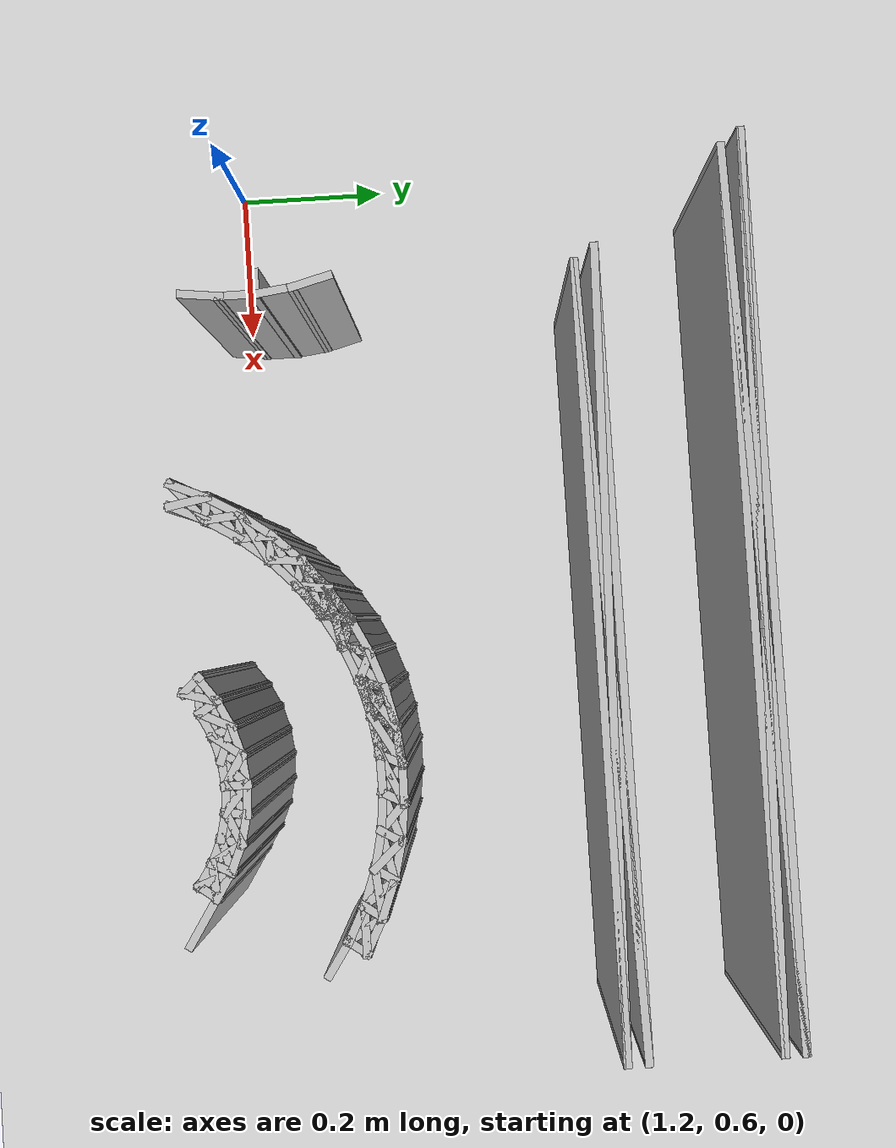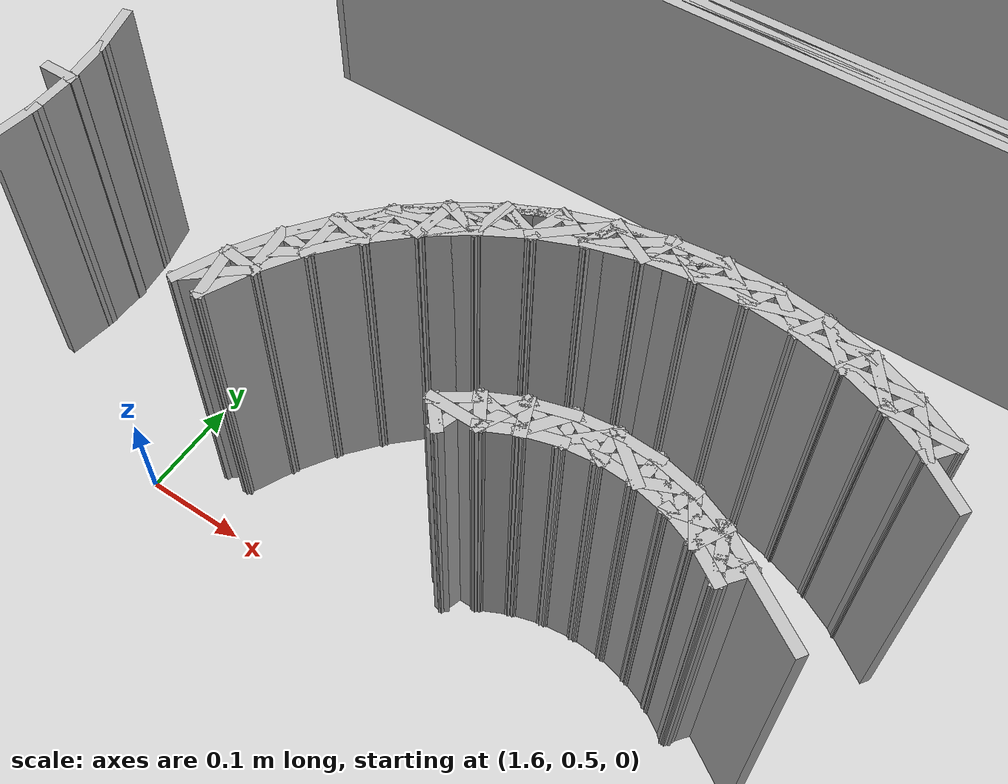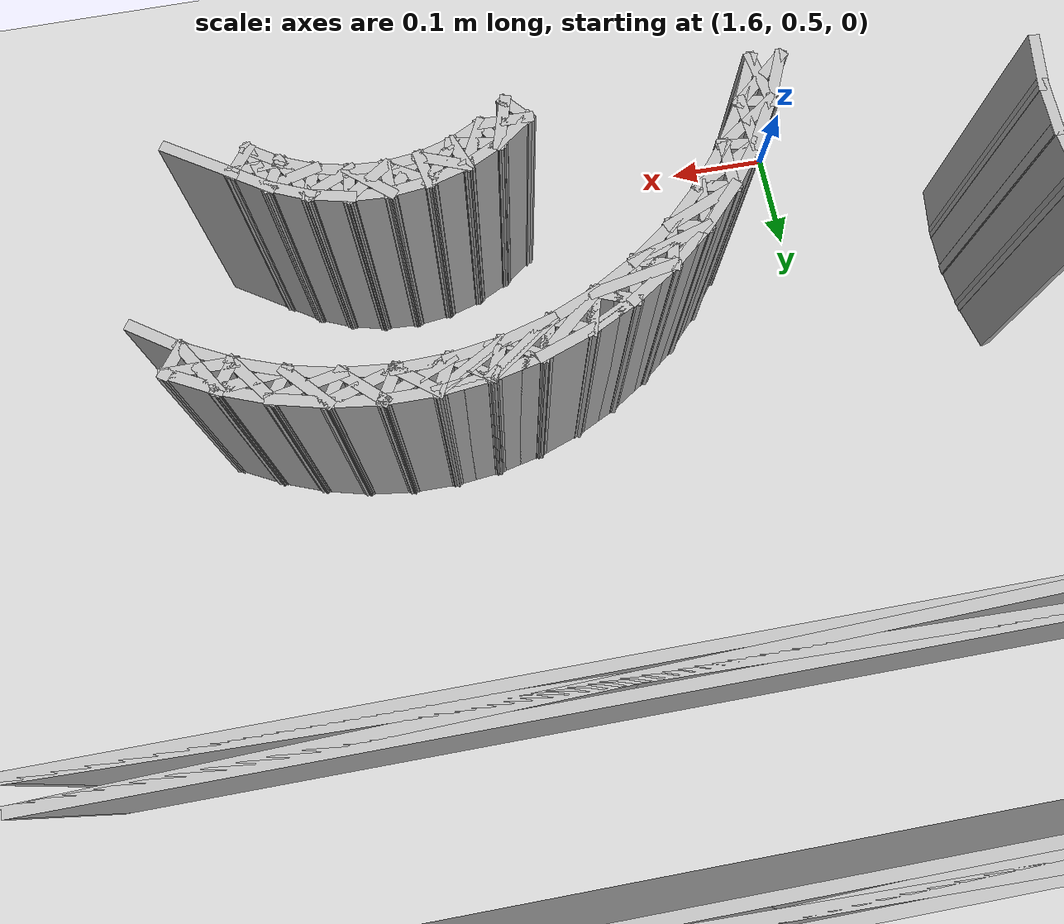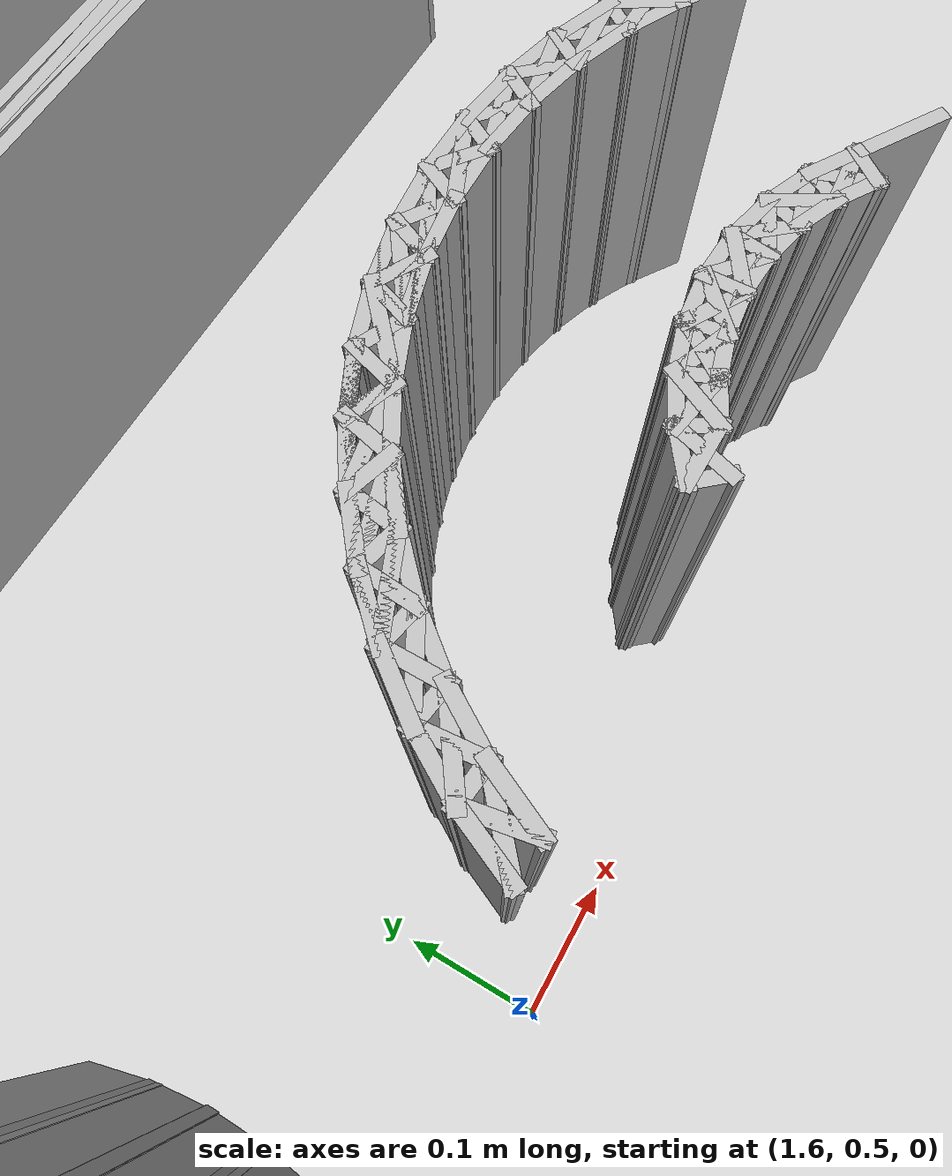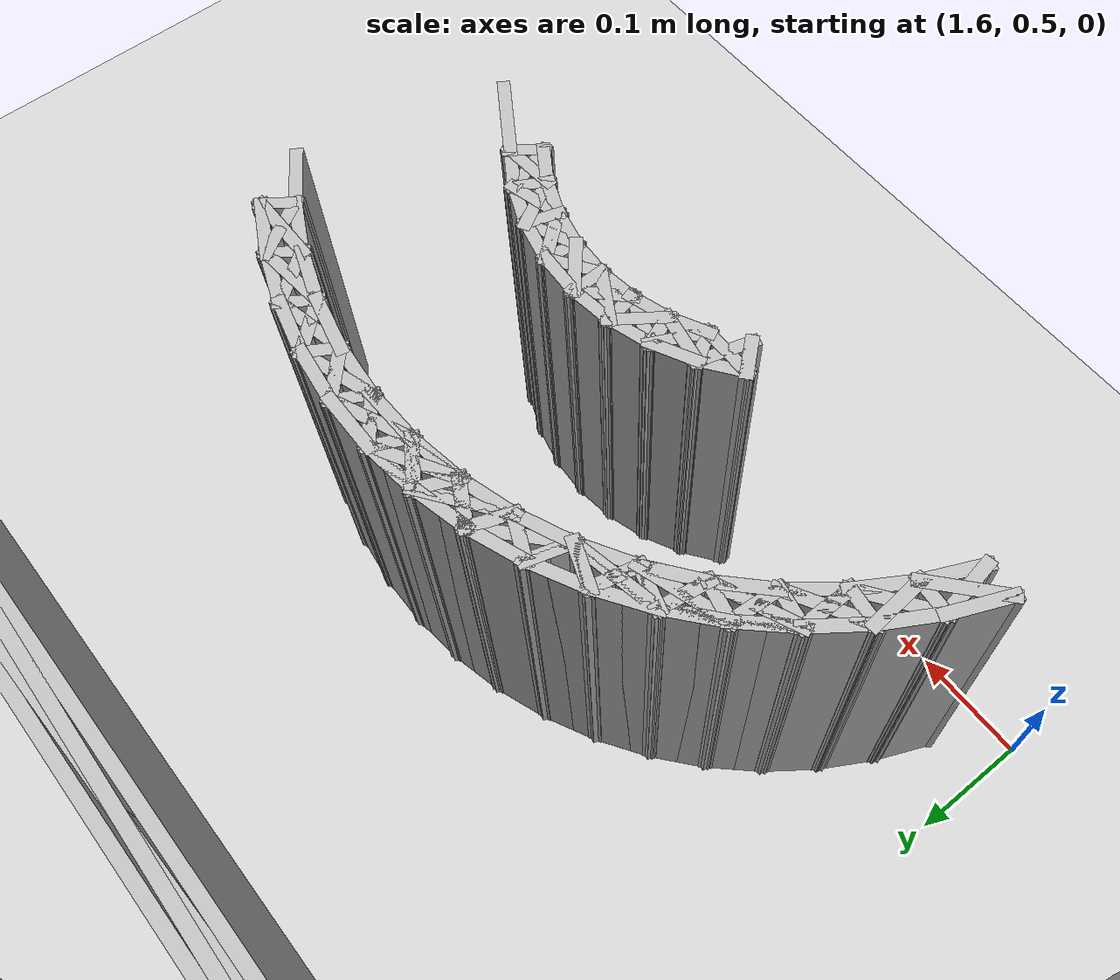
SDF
<sdf version="1.8">
 <world name="rosy_road">
  <model name="ground_plane">
   <link name="l">
    <visual name="v"><geometry><plane><normal>0 0 1</normal><size>4 2</size></plane></geometry></visual>
    <collision name="v"><geometry><plane><normal>0 0 1</normal><size>4 2</size></plane></geometry></collision>
   </link>
  </model>
  <model name="walls">
   <static>true</static>
   <link name="wall_106">
    <pose>1.8262 1.2326 0.150 0 0 0.0000</pose>
    <visual name="v"><geometry><box><size>1.0896 0.0100 0.300</size></box></geometry></visual>
    <collision name="c"><geometry><box><size>1.0896 0.0100 0.300</size></box></geometry></collision>
   </link>
   <link name="wall_107">
    <pose>1.8175 1.2450 0.150 0 0 3.1189</pose>
    <visual name="v"><geometry><box><size>1.1073 0.0100 0.300</size></box></geometry></visual>
    <collision name="c"><geometry><box><size>1.1073 0.0100 0.300</size></box></geometry></collision>
   </link>
   <link name="wall_108">
    <pose>1.8175 1.2575 0.150 0 0 0.0000</pose>
    <visual name="v"><geometry><box><size>1.1070 0.0100 0.300</size></box></geometry></visual>
    <collision name="c"><geometry><box><size>1.1070 0.0100 0.300</size></box></geometry></collision>
   </link>
   <link name="wall_109">
    <pose>1.8262 1.2450 0.150 0 0 -3.1185</pose>
    <visual name="v"><geometry><box><size>1.0899 0.0100 0.300</size></box></geometry></visual>
    <collision name="c"><geometry><box><size>1.0899 0.0100 0.300</size></box></geometry></collision>
   </link>
   <link name="wall_298">
    <pose>1.8913 0.5613 0.150 0 0 -0.8561</pose>
    <visual name="v"><geometry><box><size>0.0370 0.0100 0.300</size></box></geometry></visual>
    <collision name="c"><geometry><box><size>0.0370 0.0100 0.300</size></box></geometry></collision>
   </link>
   <link name="wall_299">
    <pose>1.9055 0.5716 0.150 0 0 1.2766</pose>
    <visual name="v"><geometry><box><size>0.0534 0.0100 0.300</size></box></geometry></visual>
    <collision name="c"><geometry><box><size>0.0534 0.0100 0.300</size></box></geometry></collision>
   </link>
   <link name="wall_300">
    <pose>1.8973 0.5810 0.150 0 0 -2.5118</pose>
    <visual name="v"><geometry><box><size>0.0471 0.0100 0.300</size></box></geometry></visual>
    <collision name="c"><geometry><box><size>0.0471 0.0100 0.300</size></box></geometry></collision>
   </link>
   <link name="wall_301">
    <pose>1.9038 0.5704 0.150 0 0 -0.0169</pose>
    <visual name="v"><geometry><box><size>0.0533 0.0100 0.300</size></box></geometry></visual>
    <collision name="c"><geometry><box><size>0.0533 0.0100 0.300</size></box></geometry></collision>
   </link>
   <link name="wall_314">
    <pose>1.9180 0.5807 0.150 0 0 -1.0283</pose>
    <visual name="v"><geometry><box><size>0.0370 0.0100 0.300</size></box></geometry></visual>
    <collision name="c"><geometry><box><size>0.0370 0.0100 0.300</size></box></geometry></collision>
   </link>
   <link name="wall_315">
    <pose>1.9337 0.5885 0.150 0 0 1.1061</pose>
    <visual name="v"><geometry><box><size>0.0533 0.0100 0.300</size></box></geometry></visual>
    <collision name="c"><geometry><box><size>0.0533 0.0100 0.300</size></box></geometry></collision>
   </link>
   <link name="wall_316">
    <pose>1.9272 0.5991 0.150 0 0 -2.6831</pose>
    <visual name="v"><geometry><box><size>0.0470 0.0100 0.300</size></box></geometry></visual>
    <collision name="c"><geometry><box><size>0.0470 0.0100 0.300</size></box></geometry></collision>
   </link>
   <link name="wall_317">
    <pose>1.9318 0.5875 0.150 0 0 -0.1903</pose>
    <visual name="v"><geometry><box><size>0.0532 0.0100 0.300</size></box></geometry></visual>
    <collision name="c"><geometry><box><size>0.0532 0.0100 0.300</size></box></geometry></collision>
   </link>
   <link name="wall_318">
    <pose>1.9382 0.5768 0.150 0 0 -2.6838</pose>
    <visual name="v"><geometry><box><size>0.0428 0.0100 0.300</size></box></geometry></visual>
    <collision name="c"><geometry><box><size>0.0428 0.0100 0.300</size></box></geometry></collision>
   </link>
   <link name="wall_336">
    <pose>1.9475 0.5952 0.150 0 0 -1.1985</pose>
    <visual name="v"><geometry><box><size>0.0370 0.0100 0.300</size></box></geometry></visual>
    <collision name="c"><geometry><box><size>0.0370 0.0100 0.300</size></box></geometry></collision>
   </link>
   <link name="wall_337">
    <pose>1.9643 0.6002 0.150 0 0 0.9317</pose>
    <visual name="v"><geometry><box><size>0.0532 0.0100 0.300</size></box></geometry></visual>
    <collision name="c"><geometry><box><size>0.0532 0.0100 0.300</size></box></geometry></collision>
   </link>
   <link name="wall_338">
    <pose>1.9598 0.6118 0.150 0 0 -2.8586</pose>
    <visual name="v"><geometry><box><size>0.0471 0.0100 0.300</size></box></geometry></visual>
    <collision name="c"><geometry><box><size>0.0471 0.0100 0.300</size></box></geometry></collision>
   </link>
   <link name="wall_339">
    <pose>1.9622 0.5995 0.150 0 0 -0.3639</pose>
    <visual name="v"><geometry><box><size>0.0533 0.0100 0.300</size></box></geometry></visual>
    <collision name="c"><geometry><box><size>0.0533 0.0100 0.300</size></box></geometry></collision>
   </link>
   <link name="wall_340">
    <pose>1.9667 0.5879 0.150 0 0 -2.8579</pose>
    <visual name="v"><geometry><box><size>0.0427 0.0100 0.300</size></box></geometry></visual>
    <collision name="c"><geometry><box><size>0.0427 0.0100 0.300</size></box></geometry></collision>
   </link>
   <link name="wall_341">
    <pose>1.9790 0.6045 0.150 0 0 -1.3734</pose>
    <visual name="v"><geometry><box><size>0.0370 0.0100 0.300</size></box></geometry></visual>
    <collision name="c"><geometry><box><size>0.0370 0.0100 0.300</size></box></geometry></collision>
   </link>
   <link name="wall_342">
    <pose>1.9965 0.6065 0.150 0 0 0.7632</pose>
    <visual name="v"><geometry><box><size>0.0534 0.0100 0.300</size></box></geometry></visual>
    <collision name="c"><geometry><box><size>0.0534 0.0100 0.300</size></box></geometry></collision>
   </link>
   <link name="wall_343">
    <pose>1.9940 0.6188 0.150 0 0 -3.0243</pose>
    <visual name="v"><geometry><box><size>0.0470 0.0100 0.300</size></box></geometry></visual>
    <collision name="c"><geometry><box><size>0.0470 0.0100 0.300</size></box></geometry></collision>
   </link>
   <link name="wall_344">
    <pose>1.9943 0.6062 0.150 0 0 -0.5321</pose>
    <visual name="v"><geometry><box><size>0.0532 0.0100 0.300</size></box></geometry></visual>
    <collision name="c"><geometry><box><size>0.0532 0.0100 0.300</size></box></geometry></collision>
   </link>
   <link name="wall_345">
    <pose>1.9968 0.5940 0.150 0 0 -3.0245</pose>
    <visual name="v"><geometry><box><size>0.0428 0.0100 0.300</size></box></geometry></visual>
    <collision name="c"><geometry><box><size>0.0428 0.0100 0.300</size></box></geometry></collision>
   </link>
   <link name="wall_351">
    <pose>2.0118 0.6083 0.150 0 0 -1.5428</pose>
    <visual name="v"><geometry><box><size>0.0370 0.0100 0.300</size></box></geometry></visual>
    <collision name="c"><geometry><box><size>0.0370 0.0100 0.300</size></box></geometry></collision>
   </link>
   <link name="wall_352">
    <pose>2.0275 0.5949 0.150 0 0 -0.0584</pose>
    <visual name="v"><geometry><box><size>0.0429 0.0100 0.300</size></box></geometry></visual>
    <collision name="c"><geometry><box><size>0.0429 0.0100 0.300</size></box></geometry></collision>
   </link>
   <link name="wall_353">
    <pose>2.0272 0.6074 0.150 0 0 2.4366</pose>
    <visual name="v"><geometry><box><size>0.0534 0.0100 0.300</size></box></geometry></visual>
    <collision name="c"><geometry><box><size>0.0534 0.0100 0.300</size></box></geometry></collision>
   </link>
   <link name="wall_354">
    <pose>2.0289 0.6198 0.150 0 0 -0.0571</pose>
    <visual name="v"><geometry><box><size>0.0471 0.0100 0.300</size></box></geometry></visual>
    <collision name="c"><geometry><box><size>0.0471 0.0100 0.300</size></box></geometry></collision>
   </link>
   <link name="wall_355">
    <pose>2.0293 0.6073 0.150 0 0 -2.5509</pose>
    <visual name="v"><geometry><box><size>0.0533 0.0100 0.300</size></box></geometry></visual>
    <collision name="c"><geometry><box><size>0.0533 0.0100 0.300</size></box></geometry></collision>
   </link>
   <link name="wall_361">
    <pose>2.0447 0.6064 0.150 0 0 1.4306</pose>
    <visual name="v"><geometry><box><size>0.0370 0.0100 0.300</size></box></geometry></visual>
    <collision name="c"><geometry><box><size>0.0370 0.0100 0.300</size></box></geometry></collision>
   </link>
   <link name="wall_362">
    <pose>2.0596 0.6030 0.150 0 0 -0.8745</pose>
    <visual name="v"><geometry><box><size>0.0533 0.0100 0.300</size></box></geometry></visual>
    <collision name="c"><geometry><box><size>0.0533 0.0100 0.300</size></box></geometry></collision>
   </link>
   <link name="wall_363">
    <pose>2.0579 0.5905 0.150 0 0 2.9155</pose>
    <visual name="v"><geometry><box><size>0.0428 0.0100 0.300</size></box></geometry></visual>
    <collision name="c"><geometry><box><size>0.0428 0.0100 0.300</size></box></geometry></collision>
   </link>
   <link name="wall_364">
    <pose>2.0617 0.6025 0.150 0 0 0.4214</pose>
    <visual name="v"><geometry><box><size>0.0533 0.0100 0.300</size></box></geometry></visual>
    <collision name="c"><geometry><box><size>0.0533 0.0100 0.300</size></box></geometry></collision>
   </link>
   <link name="wall_365">
    <pose>2.0635 0.6148 0.150 0 0 2.9146</pose>
    <visual name="v"><geometry><box><size>0.0471 0.0100 0.300</size></box></geometry></visual>
    <collision name="c"><geometry><box><size>0.0471 0.0100 0.300</size></box></geometry></collision>
   </link>
   <link name="wall_371">
    <pose>2.0768 0.5990 0.150 0 0 1.2579</pose>
    <visual name="v"><geometry><box><size>0.0370 0.0100 0.300</size></box></geometry></visual>
    <collision name="c"><geometry><box><size>0.0370 0.0100 0.300</size></box></geometry></collision>
   </link>
   <link name="wall_372">
    <pose>2.0909 0.5930 0.150 0 0 -1.0466</pose>
    <visual name="v"><geometry><box><size>0.0534 0.0100 0.300</size></box></geometry></visual>
    <collision name="c"><geometry><box><size>0.0534 0.0100 0.300</size></box></geometry></collision>
   </link>
   <link name="wall_373">
    <pose>2.0871 0.5811 0.150 0 0 2.7418</pose>
    <visual name="v"><geometry><box><size>0.0428 0.0100 0.300</size></box></geometry></visual>
    <collision name="c"><geometry><box><size>0.0428 0.0100 0.300</size></box></geometry></collision>
   </link>
   <link name="wall_374">
    <pose>2.0929 0.5922 0.150 0 0 0.2473</pose>
    <visual name="v"><geometry><box><size>0.0533 0.0100 0.300</size></box></geometry></visual>
    <collision name="c"><geometry><box><size>0.0533 0.0100 0.300</size></box></geometry></collision>
   </link>
   <link name="wall_375">
    <pose>2.0968 0.6040 0.150 0 0 2.7404</pose>
    <visual name="v"><geometry><box><size>0.0471 0.0100 0.300</size></box></geometry></visual>
    <collision name="c"><geometry><box><size>0.0471 0.0100 0.300</size></box></geometry></collision>
   </link>
   <link name="wall_379">
    <pose>2.1689 0.5613 0.150 0 0 -0.5690</pose>
    <visual name="v"><geometry><box><size>0.0749 0.0100 0.300</size></box></geometry></visual>
    <collision name="c"><geometry><box><size>0.0749 0.0100 0.300</size></box></geometry></collision>
   </link>
   <link name="wall_381">
    <pose>2.1071 0.5862 0.150 0 0 1.0874</pose>
    <visual name="v"><geometry><box><size>0.0370 0.0100 0.300</size></box></geometry></visual>
    <collision name="c"><geometry><box><size>0.0370 0.0100 0.300</size></box></geometry></collision>
   </link>
   <link name="wall_382">
    <pose>2.1200 0.5778 0.150 0 0 -1.2168</pose>
    <visual name="v"><geometry><box><size>0.0533 0.0100 0.300</size></box></geometry></visual>
    <collision name="c"><geometry><box><size>0.0533 0.0100 0.300</size></box></geometry></collision>
   </link>
   <link name="wall_383">
    <pose>2.1143 0.5668 0.150 0 0 2.5716</pose>
    <visual name="v"><geometry><box><size>0.0428 0.0100 0.300</size></box></geometry></visual>
    <collision name="c"><geometry><box><size>0.0428 0.0100 0.300</size></box></geometry></collision>
   </link>
   <link name="wall_384">
    <pose>2.1219 0.5767 0.150 0 0 0.0777</pose>
    <visual name="v"><geometry><box><size>0.0532 0.0100 0.300</size></box></geometry></visual>
    <collision name="c"><geometry><box><size>0.0532 0.0100 0.300</size></box></geometry></collision>
   </link>
   <link name="wall_385">
    <pose>2.1277 0.5877 0.150 0 0 2.5718</pose>
    <visual name="v"><geometry><box><size>0.0470 0.0100 0.300</size></box></geometry></visual>
    <collision name="c"><geometry><box><size>0.0470 0.0100 0.300</size></box></geometry></collision>
   </link>
   <link name="wall_386">
    <pose>2.1348 0.5684 0.150 0 0 0.9161</pose>
    <visual name="v"><geometry><box><size>0.0370 0.0100 0.300</size></box></geometry></visual>
    <collision name="c"><geometry><box><size>0.0370 0.0100 0.300</size></box></geometry></collision>
   </link>
   <link name="wall_738">
    <pose>1.4267 0.5982 0.150 0 0 -1.6946</pose>
    <visual name="v"><geometry><box><size>0.0565 0.0100 0.300</size></box></geometry></visual>
    <collision name="c"><geometry><box><size>0.0565 0.0100 0.300</size></box></geometry></collision>
   </link>
   <link name="wall_748">
    <pose>1.4294 0.6425 0.150 0 0 -1.5708</pose>
    <visual name="v"><geometry><box><size>0.0565 0.0100 0.300</size></box></geometry></visual>
    <collision name="c"><geometry><box><size>0.0565 0.0100 0.300</size></box></geometry></collision>
   </link>
   <link name="wall_757">
    <pose>1.4267 0.6869 0.150 0 0 -1.4470</pose>
    <visual name="v"><geometry><box><size>0.0565 0.0100 0.300</size></box></geometry></visual>
    <collision name="c"><geometry><box><size>0.0565 0.0100 0.300</size></box></geometry></collision>
   </link>
   <link name="wall_758">
    <pose>1.4168 0.6647 0.150 0 0 -3.1336</pose>
    <visual name="v"><geometry><box><size>0.0371 0.0100 0.300</size></box></geometry></visual>
    <collision name="c"><geometry><box><size>0.0371 0.0100 0.300</size></box></geometry></collision>
   </link>
   <link name="wall_767">
    <pose>1.4184 0.7306 0.150 0 0 -1.3215</pose>
    <visual name="v"><geometry><box><size>0.0566 0.0100 0.300</size></box></geometry></visual>
    <collision name="c"><geometry><box><size>0.0566 0.0100 0.300</size></box></geometry></collision>
   </link>
   <link name="wall_815">
    <pose>1.8905 1.0475 0.150 0 0 0.0000</pose>
    <visual name="v"><geometry><box><size>0.9609 0.0100 0.300</size></box></geometry></visual>
    <collision name="c"><geometry><box><size>0.9609 0.0100 0.300</size></box></geometry></collision>
   </link>
   <link name="wall_816">
    <pose>1.8818 1.0600 0.150 0 0 3.1156</pose>
    <visual name="v"><geometry><box><size>0.9786 0.0100 0.300</size></box></geometry></visual>
    <collision name="c"><geometry><box><size>0.9786 0.0100 0.300</size></box></geometry></collision>
   </link>
   <link name="wall_817">
    <pose>1.8818 1.0726 0.150 0 0 0.0000</pose>
    <visual name="v"><geometry><box><size>0.9783 0.0100 0.300</size></box></geometry></visual>
    <collision name="c"><geometry><box><size>0.9783 0.0100 0.300</size></box></geometry></collision>
   </link>
   <link name="wall_818">
    <pose>1.8905 1.0600 0.150 0 0 -3.1151</pose>
    <visual name="v"><geometry><box><size>0.9612 0.0100 0.300</size></box></geometry></visual>
    <collision name="c"><geometry><box><size>0.9612 0.0100 0.300</size></box></geometry></collision>
   </link>
   <link name="wall_850">
    <pose>1.6603 0.5712 0.150 0 0 1.1590</pose>
    <visual name="v"><geometry><box><size>0.0577 0.0100 0.300</size></box></geometry></visual>
    <collision name="c"><geometry><box><size>0.0577 0.0100 0.300</size></box></geometry></collision>
   </link>
   <link name="wall_851">
    <pose>1.6733 0.5702 0.150 0 0 -1.3972</pose>
    <visual name="v"><geometry><box><size>0.0566 0.0100 0.300</size></box></geometry></visual>
    <collision name="c"><geometry><box><size>0.0566 0.0100 0.300</size></box></geometry></collision>
   </link>
   <link name="wall_853">
    <pose>1.6737 0.5697 0.150 0 0 0.7141</pose>
    <visual name="v"><geometry><box><size>0.0715 0.0100 0.300</size></box></geometry></visual>
    <collision name="c"><geometry><box><size>0.0715 0.0100 0.300</size></box></geometry></collision>
   </link>
   <link name="wall_854">
    <pose>1.6867 0.5687 0.150 0 0 -2.0047</pose>
    <visual name="v"><geometry><box><size>0.0572 0.0100 0.300</size></box></geometry></visual>
    <collision name="c"><geometry><box><size>0.0572 0.0100 0.300</size></box></geometry></collision>
   </link>
   <link name="wall_860">
    <pose>1.6810 0.6118 0.150 0 0 1.0424</pose>
    <visual name="v"><geometry><box><size>0.0576 0.0100 0.300</size></box></geometry></visual>
    <collision name="c"><geometry><box><size>0.0576 0.0100 0.300</size></box></geometry></collision>
   </link>
   <link name="wall_861">
    <pose>1.6943 0.6104 0.150 0 0 -1.4835</pose>
    <visual name="v"><geometry><box><size>0.0545 0.0100 0.300</size></box></geometry></visual>
    <collision name="c"><geometry><box><size>0.0545 0.0100 0.300</size></box></geometry></collision>
   </link>
   <link name="wall_862">
    <pose>1.6828 0.5907 0.150 0 0 3.0334</pose>
    <visual name="v"><geometry><box><size>0.0389 0.0100 0.300</size></box></geometry></visual>
    <collision name="c"><geometry><box><size>0.0389 0.0100 0.300</size></box></geometry></collision>
   </link>
   <link name="wall_863">
    <pose>1.6947 0.6098 0.150 0 0 0.6114</pose>
    <visual name="v"><geometry><box><size>0.0737 0.0100 0.300</size></box></geometry></visual>
    <collision name="c"><geometry><box><size>0.0737 0.0100 0.300</size></box></geometry></collision>
   </link>
   <link name="wall_864">
    <pose>1.7081 0.6084 0.150 0 0 -2.1268</pose>
    <visual name="v"><geometry><box><size>0.0571 0.0100 0.300</size></box></geometry></visual>
    <collision name="c"><geometry><box><size>0.0571 0.0100 0.300</size></box></geometry></collision>
   </link>
   <link name="wall_883">
    <pose>1.7062 0.6498 0.150 0 0 0.9282</pose>
    <visual name="v"><geometry><box><size>0.0577 0.0100 0.300</size></box></geometry></visual>
    <collision name="c"><geometry><box><size>0.0577 0.0100 0.300</size></box></geometry></collision>
   </link>
   <link name="wall_884">
    <pose>1.7200 0.6478 0.150 0 0 -1.5683</pose>
    <visual name="v"><geometry><box><size>0.0526 0.0100 0.300</size></box></geometry></visual>
    <collision name="c"><geometry><box><size>0.0526 0.0100 0.300</size></box></geometry></collision>
   </link>
   <link name="wall_885">
    <pose>1.7063 0.6295 0.150 0 0 2.9972</pose>
    <visual name="v"><geometry><box><size>0.0398 0.0100 0.300</size></box></geometry></visual>
    <collision name="c"><geometry><box><size>0.0398 0.0100 0.300</size></box></geometry></collision>
   </link>
   <link name="wall_886">
    <pose>1.7205 0.6470 0.150 0 0 0.5077</pose>
    <visual name="v"><geometry><box><size>0.0760 0.0100 0.300</size></box></geometry></visual>
    <collision name="c"><geometry><box><size>0.0760 0.0100 0.300</size></box></geometry></collision>
   </link>
   <link name="wall_887">
    <pose>1.7342 0.6450 0.150 0 0 -2.2511</pose>
    <visual name="v"><geometry><box><size>0.0572 0.0100 0.300</size></box></geometry></visual>
    <collision name="c"><geometry><box><size>0.0572 0.0100 0.300</size></box></geometry></collision>
   </link>
   <link name="wall_888">
    <pose>1.7342 0.6653 0.150 0 0 -0.1906</pose>
    <visual name="v"><geometry><box><size>0.0410 0.0100 0.300</size></box></geometry></visual>
    <collision name="c"><geometry><box><size>0.0410 0.0100 0.300</size></box></geometry></collision>
   </link>
   <link name="wall_889">
    <pose>1.7499 0.6819 0.150 0 0 1.4930</pose>
    <visual name="v"><geometry><box><size>0.0506 0.0100 0.300</size></box></geometry></visual>
    <collision name="c"><geometry><box><size>0.0506 0.0100 0.300</size></box></geometry></collision>
   </link>
   <link name="wall_890">
    <pose>1.7357 0.6846 0.150 0 0 -2.3329</pose>
    <visual name="v"><geometry><box><size>0.0576 0.0100 0.300</size></box></geometry></visual>
    <collision name="c"><geometry><box><size>0.0576 0.0100 0.300</size></box></geometry></collision>
   </link>
   <link name="wall_891">
    <pose>1.7504 0.6810 0.150 0 0 0.4001</pose>
    <visual name="v"><geometry><box><size>0.0782 0.0100 0.300</size></box></geometry></visual>
    <collision name="c"><geometry><box><size>0.0782 0.0100 0.300</size></box></geometry></collision>
   </link>
   <link name="wall_892">
    <pose>1.7647 0.6783 0.150 0 0 -2.3750</pose>
    <visual name="v"><geometry><box><size>0.0571 0.0100 0.300</size></box></geometry></visual>
    <collision name="c"><geometry><box><size>0.0571 0.0100 0.300</size></box></geometry></collision>
   </link>
   <link name="wall_893">
    <pose>1.7499 0.6819 0.150 0 0 1.4930</pose>
    <visual name="v"><geometry><box><size>0.0506 0.0100 0.300</size></box></geometry></visual>
    <collision name="c"><geometry><box><size>0.0506 0.0100 0.300</size></box></geometry></collision>
   </link>
   <link name="wall_894">
    <pose>1.7662 0.6975 0.150 0 0 -0.2394</pose>
    <visual name="v"><geometry><box><size>0.0424 0.0100 0.300</size></box></geometry></visual>
    <collision name="c"><geometry><box><size>0.0424 0.0100 0.300</size></box></geometry></collision>
   </link>
   <link name="wall_895">
    <pose>1.7837 0.7120 0.150 0 0 1.4150</pose>
    <visual name="v"><geometry><box><size>0.0487 0.0100 0.300</size></box></geometry></visual>
    <collision name="c"><geometry><box><size>0.0487 0.0100 0.300</size></box></geometry></collision>
   </link>
   <link name="wall_896">
    <pose>1.7690 0.7157 0.150 0 0 -2.4508</pose>
    <visual name="v"><geometry><box><size>0.0577 0.0100 0.300</size></box></geometry></visual>
    <collision name="c"><geometry><box><size>0.0577 0.0100 0.300</size></box></geometry></collision>
   </link>
   <link name="wall_897">
    <pose>1.7842 0.7110 0.150 0 0 0.2931</pose>
    <visual name="v"><geometry><box><size>0.0805 0.0100 0.300</size></box></geometry></visual>
    <collision name="c"><geometry><box><size>0.0805 0.0100 0.300</size></box></geometry></collision>
   </link>
   <link name="wall_898">
    <pose>1.7990 0.7074 0.150 0 0 -2.4994</pose>
    <visual name="v"><geometry><box><size>0.0571 0.0100 0.300</size></box></geometry></visual>
    <collision name="c"><geometry><box><size>0.0571 0.0100 0.300</size></box></geometry></collision>
   </link>
   <link name="wall_899">
    <pose>1.7504 0.6810 0.150 0 0 -2.7415</pose>
    <visual name="v"><geometry><box><size>0.0782 0.0100 0.300</size></box></geometry></visual>
    <collision name="c"><geometry><box><size>0.0782 0.0100 0.300</size></box></geometry></collision>
   </link>
   <link name="wall_900">
    <pose>1.7357 0.6846 0.150 0 0 0.8086</pose>
    <visual name="v"><geometry><box><size>0.0576 0.0100 0.300</size></box></geometry></visual>
    <collision name="c"><geometry><box><size>0.0576 0.0100 0.300</size></box></geometry></collision>
   </link>
   <link name="wall_901">
    <pose>1.7662 0.6975 0.150 0 0 -0.2394</pose>
    <visual name="v"><geometry><box><size>0.0424 0.0100 0.300</size></box></geometry></visual>
    <collision name="c"><geometry><box><size>0.0424 0.0100 0.300</size></box></geometry></collision>
   </link>
   <link name="wall_902">
    <pose>1.7647 0.6783 0.150 0 0 -2.3750</pose>
    <visual name="v"><geometry><box><size>0.0571 0.0100 0.300</size></box></geometry></visual>
    <collision name="c"><geometry><box><size>0.0571 0.0100 0.300</size></box></geometry></collision>
   </link>
   <link name="wall_913">
    <pose>1.8018 0.7255 0.150 0 0 -0.2969</pose>
    <visual name="v"><geometry><box><size>0.0438 0.0100 0.300</size></box></geometry></visual>
    <collision name="c"><geometry><box><size>0.0438 0.0100 0.300</size></box></geometry></collision>
   </link>
   <link name="wall_914">
    <pose>1.8210 0.7380 0.150 0 0 1.3410</pose>
    <visual name="v"><geometry><box><size>0.0471 0.0100 0.300</size></box></geometry></visual>
    <collision name="c"><geometry><box><size>0.0471 0.0100 0.300</size></box></geometry></collision>
   </link>
   <link name="wall_915">
    <pose>1.8058 0.7427 0.150 0 0 -2.5663</pose>
    <visual name="v"><geometry><box><size>0.0578 0.0100 0.300</size></box></geometry></visual>
    <collision name="c"><geometry><box><size>0.0578 0.0100 0.300</size></box></geometry></collision>
   </link>
   <link name="wall_916">
    <pose>1.8214 0.7368 0.150 0 0 0.1860</pose>
    <visual name="v"><geometry><box><size>0.0828 0.0100 0.300</size></box></geometry></visual>
    <collision name="c"><geometry><box><size>0.0828 0.0100 0.300</size></box></geometry></collision>
   </link>
   <link name="wall_917">
    <pose>1.8366 0.7321 0.150 0 0 -2.6224</pose>
    <visual name="v"><geometry><box><size>0.0571 0.0100 0.300</size></box></geometry></visual>
    <collision name="c"><geometry><box><size>0.0571 0.0100 0.300</size></box></geometry></collision>
   </link>
   <link name="wall_918">
    <pose>1.7842 0.7110 0.150 0 0 -2.8485</pose>
    <visual name="v"><geometry><box><size>0.0805 0.0100 0.300</size></box></geometry></visual>
    <collision name="c"><geometry><box><size>0.0805 0.0100 0.300</size></box></geometry></collision>
   </link>
   <link name="wall_919">
    <pose>1.7690 0.7157 0.150 0 0 0.6908</pose>
    <visual name="v"><geometry><box><size>0.0577 0.0100 0.300</size></box></geometry></visual>
    <collision name="c"><geometry><box><size>0.0577 0.0100 0.300</size></box></geometry></collision>
   </link>
   <link name="wall_920">
    <pose>1.7837 0.7120 0.150 0 0 -1.7265</pose>
    <visual name="v"><geometry><box><size>0.0487 0.0100 0.300</size></box></geometry></visual>
    <collision name="c"><geometry><box><size>0.0487 0.0100 0.300</size></box></geometry></collision>
   </link>
   <link name="wall_921">
    <pose>1.7990 0.7074 0.150 0 0 0.6422</pose>
    <visual name="v"><geometry><box><size>0.0571 0.0100 0.300</size></box></geometry></visual>
    <collision name="c"><geometry><box><size>0.0571 0.0100 0.300</size></box></geometry></collision>
   </link>
   <link name="wall_922">
    <pose>1.8018 0.7255 0.150 0 0 2.8447</pose>
    <visual name="v"><geometry><box><size>0.0438 0.0100 0.300</size></box></geometry></visual>
    <collision name="c"><geometry><box><size>0.0438 0.0100 0.300</size></box></geometry></collision>
   </link>
   <link name="wall_923">
    <pose>1.8058 0.7427 0.150 0 0 0.5753</pose>
    <visual name="v"><geometry><box><size>0.0578 0.0100 0.300</size></box></geometry></visual>
    <collision name="c"><geometry><box><size>0.0578 0.0100 0.300</size></box></geometry></collision>
   </link>
   <link name="wall_924">
    <pose>1.8406 0.7492 0.150 0 0 -0.3616</pose>
    <visual name="v"><geometry><box><size>0.0454 0.0100 0.300</size></box></geometry></visual>
    <collision name="c"><geometry><box><size>0.0454 0.0100 0.300</size></box></geometry></collision>
   </link>
   <link name="wall_925">
    <pose>1.8611 0.7592 0.150 0 0 1.2756</pose>
    <visual name="v"><geometry><box><size>0.0453 0.0100 0.300</size></box></geometry></visual>
    <collision name="c"><geometry><box><size>0.0453 0.0100 0.300</size></box></geometry></collision>
   </link>
   <link name="wall_926">
    <pose>1.8455 0.7652 0.150 0 0 -2.6848</pose>
    <visual name="v"><geometry><box><size>0.0576 0.0100 0.300</size></box></geometry></visual>
    <collision name="c"><geometry><box><size>0.0576 0.0100 0.300</size></box></geometry></collision>
   </link>
   <link name="wall_927">
    <pose>1.8210 0.7380 0.150 0 0 -1.8006</pose>
    <visual name="v"><geometry><box><size>0.0471 0.0100 0.300</size></box></geometry></visual>
    <collision name="c"><geometry><box><size>0.0471 0.0100 0.300</size></box></geometry></collision>
   </link>
   <link name="wall_928">
    <pose>1.8770 0.7520 0.150 0 0 0.3962</pose>
    <visual name="v"><geometry><box><size>0.0571 0.0100 0.300</size></box></geometry></visual>
    <collision name="c"><geometry><box><size>0.0571 0.0100 0.300</size></box></geometry></collision>
   </link>
   <link name="wall_929">
    <pose>1.8818 0.7680 0.150 0 0 2.7150</pose>
    <visual name="v"><geometry><box><size>0.0470 0.0100 0.300</size></box></geometry></visual>
    <collision name="c"><geometry><box><size>0.0470 0.0100 0.300</size></box></geometry></collision>
   </link>
   <link name="wall_930">
    <pose>1.8875 0.7829 0.150 0 0 0.3411</pose>
    <visual name="v"><geometry><box><size>0.0577 0.0100 0.300</size></box></geometry></visual>
    <collision name="c"><geometry><box><size>0.0577 0.0100 0.300</size></box></geometry></collision>
   </link>
   <link name="wall_931">
    <pose>1.8826 0.7669 0.150 0 0 -2.4121</pose>
    <visual name="v"><geometry><box><size>0.0828 0.0100 0.300</size></box></geometry></visual>
    <collision name="c"><geometry><box><size>0.0828 0.0100 0.300</size></box></geometry></collision>
   </link>
   <link name="wall_932">
    <pose>1.8214 0.7368 0.150 0 0 -2.9556</pose>
    <visual name="v"><geometry><box><size>0.0828 0.0100 0.300</size></box></geometry></visual>
    <collision name="c"><geometry><box><size>0.0828 0.0100 0.300</size></box></geometry></collision>
   </link>
   <link name="wall_954">
    <pose>1.9034 0.7756 0.150 0 0 1.2113</pose>
    <visual name="v"><geometry><box><size>0.0438 0.0100 0.300</size></box></geometry></visual>
    <collision name="c"><geometry><box><size>0.0438 0.0100 0.300</size></box></geometry></collision>
   </link>
   <link name="wall_955">
    <pose>1.9252 0.7816 0.150 0 0 -0.5013</pose>
    <visual name="v"><geometry><box><size>0.0488 0.0100 0.300</size></box></geometry></visual>
    <collision name="c"><geometry><box><size>0.0488 0.0100 0.300</size></box></geometry></collision>
   </link>
   <link name="wall_956">
    <pose>1.9195 0.7668 0.150 0 0 -2.8703</pose>
    <visual name="v"><geometry><box><size>0.0572 0.0100 0.300</size></box></geometry></visual>
    <collision name="c"><geometry><box><size>0.0572 0.0100 0.300</size></box></geometry></collision>
   </link>
   <link name="wall_957">
    <pose>1.9257 0.7807 0.150 0 0 0.6208</pose>
    <visual name="v"><geometry><box><size>0.0806 0.0100 0.300</size></box></geometry></visual>
    <collision name="c"><geometry><box><size>0.0806 0.0100 0.300</size></box></geometry></collision>
   </link>
   <link name="wall_958">
    <pose>1.9313 0.7955 0.150 0 0 -2.9189</pose>
    <visual name="v"><geometry><box><size>0.0577 0.0100 0.300</size></box></geometry></visual>
    <collision name="c"><geometry><box><size>0.0577 0.0100 0.300</size></box></geometry></collision>
   </link>
   <link name="wall_959">
    <pose>1.8826 0.7669 0.150 0 0 -2.4121</pose>
    <visual name="v"><geometry><box><size>0.0828 0.0100 0.300</size></box></geometry></visual>
    <collision name="c"><geometry><box><size>0.0828 0.0100 0.300</size></box></geometry></collision>
   </link>
   <link name="wall_960">
    <pose>1.8406 0.7492 0.150 0 0 2.7800</pose>
    <visual name="v"><geometry><box><size>0.0454 0.0100 0.300</size></box></geometry></visual>
    <collision name="c"><geometry><box><size>0.0454 0.0100 0.300</size></box></geometry></collision>
   </link>
   <link name="wall_961">
    <pose>1.8455 0.7652 0.150 0 0 0.4568</pose>
    <visual name="v"><geometry><box><size>0.0576 0.0100 0.300</size></box></geometry></visual>
    <collision name="c"><geometry><box><size>0.0576 0.0100 0.300</size></box></geometry></collision>
   </link>
   <link name="wall_962">
    <pose>1.8611 0.7592 0.150 0 0 -1.8660</pose>
    <visual name="v"><geometry><box><size>0.0453 0.0100 0.300</size></box></geometry></visual>
    <collision name="c"><geometry><box><size>0.0453 0.0100 0.300</size></box></geometry></collision>
   </link>
   <link name="wall_963">
    <pose>1.8770 0.7520 0.150 0 0 0.3962</pose>
    <visual name="v"><geometry><box><size>0.0571 0.0100 0.300</size></box></geometry></visual>
    <collision name="c"><geometry><box><size>0.0571 0.0100 0.300</size></box></geometry></collision>
   </link>
   <link name="wall_964">
    <pose>1.8818 0.7680 0.150 0 0 2.7150</pose>
    <visual name="v"><geometry><box><size>0.0470 0.0100 0.300</size></box></geometry></visual>
    <collision name="c"><geometry><box><size>0.0470 0.0100 0.300</size></box></geometry></collision>
   </link>
   <link name="wall_965">
    <pose>1.8875 0.7829 0.150 0 0 0.3411</pose>
    <visual name="v"><geometry><box><size>0.0577 0.0100 0.300</size></box></geometry></visual>
    <collision name="c"><geometry><box><size>0.0577 0.0100 0.300</size></box></geometry></collision>
   </link>
   <link name="wall_966">
    <pose>1.9034 0.7756 0.150 0 0 -1.9303</pose>
    <visual name="v"><geometry><box><size>0.0438 0.0100 0.300</size></box></geometry></visual>
    <collision name="c"><geometry><box><size>0.0438 0.0100 0.300</size></box></geometry></collision>
   </link>
   <link name="wall_967">
    <pose>1.9195 0.7668 0.150 0 0 0.2713</pose>
    <visual name="v"><geometry><box><size>0.0572 0.0100 0.300</size></box></geometry></visual>
    <collision name="c"><geometry><box><size>0.0572 0.0100 0.300</size></box></geometry></collision>
   </link>
   <link name="wall_968">
    <pose>1.9474 0.7867 0.150 0 0 1.1542</pose>
    <visual name="v"><geometry><box><size>0.0424 0.0100 0.300</size></box></geometry></visual>
    <collision name="c"><geometry><box><size>0.0424 0.0100 0.300</size></box></geometry></collision>
   </link>
   <link name="wall_969">
    <pose>1.9697 0.7900 0.150 0 0 -0.5787</pose>
    <visual name="v"><geometry><box><size>0.0506 0.0100 0.300</size></box></geometry></visual>
    <collision name="c"><geometry><box><size>0.0506 0.0100 0.300</size></box></geometry></collision>
   </link>
   <link name="wall_970">
    <pose>1.9636 0.7762 0.150 0 0 -2.9925</pose>
    <visual name="v"><geometry><box><size>0.0571 0.0100 0.300</size></box></geometry></visual>
    <collision name="c"><geometry><box><size>0.0571 0.0100 0.300</size></box></geometry></collision>
   </link>
   <link name="wall_971">
    <pose>1.9702 0.7891 0.150 0 0 0.5143</pose>
    <visual name="v"><geometry><box><size>0.0783 0.0100 0.300</size></box></geometry></visual>
    <collision name="c"><geometry><box><size>0.0783 0.0100 0.300</size></box></geometry></collision>
   </link>
   <link name="wall_972">
    <pose>1.9763 0.8030 0.150 0 0 -3.0363</pose>
    <visual name="v"><geometry><box><size>0.0577 0.0100 0.300</size></box></geometry></visual>
    <collision name="c"><geometry><box><size>0.0577 0.0100 0.300</size></box></geometry></collision>
   </link>
   <link name="wall_973">
    <pose>1.9257 0.7807 0.150 0 0 -2.5208</pose>
    <visual name="v"><geometry><box><size>0.0806 0.0100 0.300</size></box></geometry></visual>
    <collision name="c"><geometry><box><size>0.0806 0.0100 0.300</size></box></geometry></collision>
   </link>
   <link name="wall_993">
    <pose>1.9925 0.7925 0.150 0 0 1.1025</pose>
    <visual name="v"><geometry><box><size>0.0410 0.0100 0.300</size></box></geometry></visual>
    <collision name="c"><geometry><box><size>0.0410 0.0100 0.300</size></box></geometry></collision>
   </link>
   <link name="wall_994">
    <pose>2.0150 0.7930 0.150 0 0 -0.6593</pose>
    <visual name="v"><geometry><box><size>0.0525 0.0100 0.300</size></box></geometry></visual>
    <collision name="c"><geometry><box><size>0.0525 0.0100 0.300</size></box></geometry></collision>
   </link>
   <link name="wall_995">
    <pose>2.0084 0.7800 0.150 0 0 -3.1172</pose>
    <visual name="v"><geometry><box><size>0.0571 0.0100 0.300</size></box></geometry></visual>
    <collision name="c"><geometry><box><size>0.0571 0.0100 0.300</size></box></geometry></collision>
   </link>
   <link name="wall_996">
    <pose>2.0153 0.7922 0.150 0 0 0.4078</pose>
    <visual name="v"><geometry><box><size>0.0761 0.0100 0.300</size></box></geometry></visual>
    <collision name="c"><geometry><box><size>0.0761 0.0100 0.300</size></box></geometry></collision>
   </link>
   <link name="wall_997">
    <pose>2.0218 0.8052 0.150 0 0 3.1307</pose>
    <visual name="v"><geometry><box><size>0.0577 0.0100 0.300</size></box></geometry></visual>
    <collision name="c"><geometry><box><size>0.0577 0.0100 0.300</size></box></geometry></collision>
   </link>
   <link name="wall_998">
    <pose>1.9702 0.7891 0.150 0 0 -2.6273</pose>
    <visual name="v"><geometry><box><size>0.0783 0.0100 0.300</size></box></geometry></visual>
    <collision name="c"><geometry><box><size>0.0783 0.0100 0.300</size></box></geometry></collision>
   </link>
   <link name="wall_999">
    <pose>1.9252 0.7816 0.150 0 0 2.6403</pose>
    <visual name="v"><geometry><box><size>0.0488 0.0100 0.300</size></box></geometry></visual>
    <collision name="c"><geometry><box><size>0.0488 0.0100 0.300</size></box></geometry></collision>
   </link>
   <link name="wall_1000">
    <pose>1.9313 0.7955 0.150 0 0 0.2227</pose>
    <visual name="v"><geometry><box><size>0.0577 0.0100 0.300</size></box></geometry></visual>
    <collision name="c"><geometry><box><size>0.0577 0.0100 0.300</size></box></geometry></collision>
   </link>
   <link name="wall_1001">
    <pose>1.9474 0.7867 0.150 0 0 -1.9874</pose>
    <visual name="v"><geometry><box><size>0.0424 0.0100 0.300</size></box></geometry></visual>
    <collision name="c"><geometry><box><size>0.0424 0.0100 0.300</size></box></geometry></collision>
   </link>
   <link name="wall_1002">
    <pose>1.9636 0.7762 0.150 0 0 0.1491</pose>
    <visual name="v"><geometry><box><size>0.0571 0.0100 0.300</size></box></geometry></visual>
    <collision name="c"><geometry><box><size>0.0571 0.0100 0.300</size></box></geometry></collision>
   </link>
   <link name="wall_1003">
    <pose>1.9697 0.7900 0.150 0 0 2.5629</pose>
    <visual name="v"><geometry><box><size>0.0506 0.0100 0.300</size></box></geometry></visual>
    <collision name="c"><geometry><box><size>0.0506 0.0100 0.300</size></box></geometry></collision>
   </link>
   <link name="wall_1004">
    <pose>1.9763 0.8030 0.150 0 0 0.1053</pose>
    <visual name="v"><geometry><box><size>0.0577 0.0100 0.300</size></box></geometry></visual>
    <collision name="c"><geometry><box><size>0.0577 0.0100 0.300</size></box></geometry></collision>
   </link>
   <link name="wall_1005">
    <pose>2.0378 0.7927 0.150 0 0 1.0574</pose>
    <visual name="v"><geometry><box><size>0.0399 0.0100 0.300</size></box></geometry></visual>
    <collision name="c"><geometry><box><size>0.0399 0.0100 0.300</size></box></geometry></collision>
   </link>
   <link name="wall_1006">
    <pose>2.0603 0.7905 0.150 0 0 -0.7454</pose>
    <visual name="v"><geometry><box><size>0.0545 0.0100 0.300</size></box></geometry></visual>
    <collision name="c"><geometry><box><size>0.0545 0.0100 0.300</size></box></geometry></collision>
   </link>
   <link name="wall_1007">
    <pose>2.0534 0.7783 0.150 0 0 3.0417</pose>
    <visual name="v"><geometry><box><size>0.0571 0.0100 0.300</size></box></geometry></visual>
    <collision name="c"><geometry><box><size>0.0571 0.0100 0.300</size></box></geometry></collision>
   </link>
   <link name="wall_1008">
    <pose>2.0605 0.7898 0.150 0 0 0.3023</pose>
    <visual name="v"><geometry><box><size>0.0738 0.0100 0.300</size></box></geometry></visual>
    <collision name="c"><geometry><box><size>0.0738 0.0100 0.300</size></box></geometry></collision>
   </link>
   <link name="wall_1009">
    <pose>2.0673 0.8020 0.150 0 0 3.0121</pose>
    <visual name="v"><geometry><box><size>0.0577 0.0100 0.300</size></box></geometry></visual>
    <collision name="c"><geometry><box><size>0.0577 0.0100 0.300</size></box></geometry></collision>
   </link>
   <link name="wall_1019">
    <pose>2.0829 0.7875 0.150 0 0 1.0189</pose>
    <visual name="v"><geometry><box><size>0.0389 0.0100 0.300</size></box></geometry></visual>
    <collision name="c"><geometry><box><size>0.0389 0.0100 0.300</size></box></geometry></collision>
   </link>
   <link name="wall_1020">
    <pose>2.1050 0.7825 0.150 0 0 -0.8315</pose>
    <visual name="v"><geometry><box><size>0.0565 0.0100 0.300</size></box></geometry></visual>
    <collision name="c"><geometry><box><size>0.0565 0.0100 0.300</size></box></geometry></collision>
   </link>
   <link name="wall_1021">
    <pose>2.0979 0.7711 0.150 0 0 2.9186</pose>
    <visual name="v"><geometry><box><size>0.0572 0.0100 0.300</size></box></geometry></visual>
    <collision name="c"><geometry><box><size>0.0572 0.0100 0.300</size></box></geometry></collision>
   </link>
   <link name="wall_1022">
    <pose>2.1051 0.7820 0.150 0 0 0.1994</pose>
    <visual name="v"><geometry><box><size>0.0716 0.0100 0.300</size></box></geometry></visual>
    <collision name="c"><geometry><box><size>0.0716 0.0100 0.300</size></box></geometry></collision>
   </link>
   <link name="wall_1023">
    <pose>2.1122 0.7935 0.150 0 0 2.8961</pose>
    <visual name="v"><geometry><box><size>0.0577 0.0100 0.300</size></box></geometry></visual>
    <collision name="c"><geometry><box><size>0.0577 0.0100 0.300</size></box></geometry></collision>
   </link>
   <link name="wall_1033">
    <pose>2.1271 0.7770 0.150 0 0 0.9902</pose>
    <visual name="v"><geometry><box><size>0.0381 0.0100 0.300</size></box></geometry></visual>
    <collision name="c"><geometry><box><size>0.0381 0.0100 0.300</size></box></geometry></collision>
   </link>
   <link name="wall_1034">
    <pose>2.1484 0.7693 0.150 0 0 -0.9226</pose>
    <visual name="v"><geometry><box><size>0.0585 0.0100 0.300</size></box></geometry></visual>
    <collision name="c"><geometry><box><size>0.0585 0.0100 0.300</size></box></geometry></collision>
   </link>
   <link name="wall_1035">
    <pose>2.1412 0.7585 0.150 0 0 2.7953</pose>
    <visual name="v"><geometry><box><size>0.0571 0.0100 0.300</size></box></geometry></visual>
    <collision name="c"><geometry><box><size>0.0571 0.0100 0.300</size></box></geometry></collision>
   </link>
   <link name="wall_1036">
    <pose>2.1485 0.7689 0.150 0 0 0.0979</pose>
    <visual name="v"><geometry><box><size>0.0693 0.0100 0.300</size></box></geometry></visual>
    <collision name="c"><geometry><box><size>0.0693 0.0100 0.300</size></box></geometry></collision>
   </link>
   <link name="wall_1037">
    <pose>2.1557 0.7798 0.150 0 0 2.7790</pose>
    <visual name="v"><geometry><box><size>0.0577 0.0100 0.300</size></box></geometry></visual>
    <collision name="c"><geometry><box><size>0.0577 0.0100 0.300</size></box></geometry></collision>
   </link>
   <link name="wall_1047">
    <pose>2.1697 0.7612 0.150 0 0 0.9610</pose>
    <visual name="v"><geometry><box><size>0.0375 0.0100 0.300</size></box></geometry></visual>
    <collision name="c"><geometry><box><size>0.0375 0.0100 0.300</size></box></geometry></collision>
   </link>
   <link name="wall_1048">
    <pose>2.1898 0.7510 0.150 0 0 -1.0159</pose>
    <visual name="v"><geometry><box><size>0.0606 0.0100 0.300</size></box></geometry></visual>
    <collision name="c"><geometry><box><size>0.0606 0.0100 0.300</size></box></geometry></collision>
   </link>
   <link name="wall_1049">
    <pose>2.1825 0.7406 0.150 0 0 2.6720</pose>
    <visual name="v"><geometry><box><size>0.0571 0.0100 0.300</size></box></geometry></visual>
    <collision name="c"><geometry><box><size>0.0571 0.0100 0.300</size></box></geometry></collision>
   </link>
   <link name="wall_1050">
    <pose>2.1899 0.7507 0.150 0 0 -0.0036</pose>
    <visual name="v"><geometry><box><size>0.0671 0.0100 0.300</size></box></geometry></visual>
    <collision name="c"><geometry><box><size>0.0671 0.0100 0.300</size></box></geometry></collision>
   </link>
   <link name="wall_1051">
    <pose>2.1972 0.7612 0.150 0 0 2.6613</pose>
    <visual name="v"><geometry><box><size>0.0577 0.0100 0.300</size></box></geometry></visual>
    <collision name="c"><geometry><box><size>0.0577 0.0100 0.300</size></box></geometry></collision>
   </link>
   <link name="wall_1061">
    <pose>2.2101 0.7405 0.150 0 0 0.9353</pose>
    <visual name="v"><geometry><box><size>0.0371 0.0100 0.300</size></box></geometry></visual>
    <collision name="c"><geometry><box><size>0.0371 0.0100 0.300</size></box></geometry></collision>
   </link>
   <link name="wall_1063">
    <pose>2.2213 0.7177 0.150 0 0 2.5468</pose>
    <visual name="v"><geometry><box><size>0.0572 0.0100 0.300</size></box></geometry></visual>
    <collision name="c"><geometry><box><size>0.0572 0.0100 0.300</size></box></geometry></collision>
   </link>
  </model>
 </world>
</sdf>
